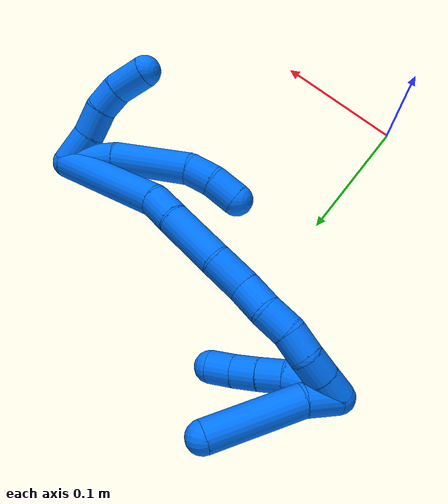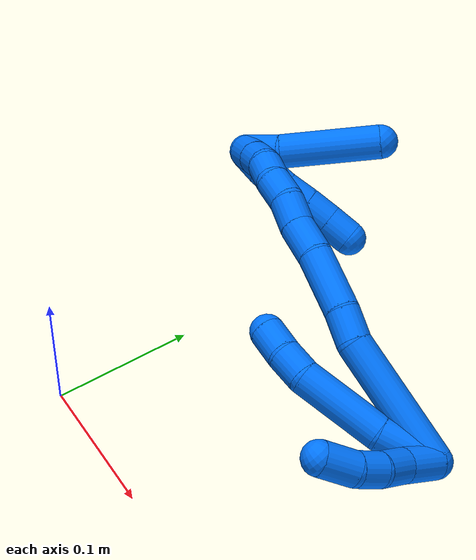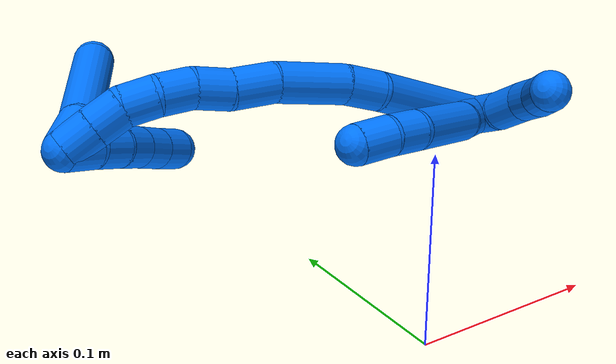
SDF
<sdf version="1.7">
 <world name="default">
  <model name="14">
   <static>0</static>
   <link name="14">
    <collision name="collision-cylinder-e_1_2_8">
     <pose>0.004494 0.006749 -0.019469 -2.80789 0.214724 -1.13852</pose>
     <geometry><cylinder><radius>0.0125</radius><length>0.042181</length></cylinder></geometry>
     <surface>
      <friction><ode><mu>1.16</mu><mu2>1.16</mu2><slip1>0</slip1><slip2>0</slip2></ode></friction>
      <contact><ode><kp>1e+06</kp><kd>1</kd><max_vel>0</max_vel><min_depth>0.001</min_depth></ode></contact>
     </surface>
    </collision>
    <visual name="visual-cylinder-e_1_2_8">
     <pose>0.004494 0.006749 -0.019469 -2.80789 0.214724 -1.13852</pose>
     <geometry><cylinder><radius>0.0125</radius><length>0.042181</length></cylinder></geometry>
     <material><ambient>0 0.462745 1 1</ambient></material>
    </visual>
    <collision name="collision-cylinder-e_2_8_9">
     <pose>0.008647 0.023727 -0.068892 -2.81255 -0.01078 0.064909</pose>
     <geometry><cylinder><radius>0.0125</radius><length>0.063306</length></cylinder></geometry>
     <surface>
      <friction><ode><mu>1.16</mu><mu2>1.16</mu2><slip1>0</slip1><slip2>0</slip2></ode></friction>
      <contact><ode><kp>1e+06</kp><kd>1</kd><max_vel>0</max_vel><min_depth>0.001</min_depth></ode></contact>
     </surface>
    </collision>
    <visual name="visual-cylinder-e_2_8_9">
     <pose>0.008647 0.023727 -0.068892 -2.81255 -0.01078 0.064909</pose>
     <geometry><cylinder><radius>0.0125</radius><length>0.063306</length></cylinder></geometry>
     <material><ambient>0 0.462745 1 1</ambient></material>
    </visual>
    <collision name="collision-cylinder-e_3_9_10">
     <pose>0.00498 0.037927 -0.108216 -2.74068 -0.315798 1.32937</pose>
     <geometry><cylinder><radius>0.0125</radius><length>0.021416</length></cylinder></geometry>
     <surface>
      <friction><ode><mu>1.16</mu><mu2>1.16</mu2><slip1>0</slip1><slip2>0</slip2></ode></friction>
      <contact><ode><kp>1e+06</kp><kd>1</kd><max_vel>0</max_vel><min_depth>0.001</min_depth></ode></contact>
     </surface>
    </collision>
    <visual name="visual-cylinder-e_3_9_10">
     <pose>0.00498 0.037927 -0.108216 -2.74068 -0.315798 1.32937</pose>
     <geometry><cylinder><radius>0.0125</radius><length>0.021416</length></cylinder></geometry>
     <material><ambient>0 0.462745 1 1</ambient></material>
    </visual>
    <collision name="collision-cylinder-e_4_10_6">
     <pose>-0.003803 0.04691 -0.126447 -2.62685 -0.492173 1.52404</pose>
     <geometry><cylinder><radius>0.0125</radius><length>0.023097</length></cylinder></geometry>
     <surface>
      <friction><ode><mu>1.16</mu><mu2>1.16</mu2><slip1>0</slip1><slip2>0</slip2></ode></friction>
      <contact><ode><kp>1e+06</kp><kd>1</kd><max_vel>0</max_vel><min_depth>0.001</min_depth></ode></contact>
     </surface>
    </collision>
    <visual name="visual-cylinder-e_4_10_6">
     <pose>-0.003803 0.04691 -0.126447 -2.62685 -0.492173 1.52404</pose>
     <geometry><cylinder><radius>0.0125</radius><length>0.023097</length></cylinder></geometry>
     <material><ambient>0 0.462745 1 1</ambient></material>
    </visual>
    <collision name="collision-cylinder-e_1_2_11">
     <pose>0.011966 0.000285 -0.007916 -3.10562 0.986063 -3.07466</pose>
     <geometry><cylinder><radius>0.0125</radius><length>0.0287</length></cylinder></geometry>
     <surface>
      <friction><ode><mu>1.16</mu><mu2>1.16</mu2><slip1>0</slip1><slip2>0</slip2></ode></friction>
      <contact><ode><kp>1e+06</kp><kd>1</kd><max_vel>0</max_vel><min_depth>0.001</min_depth></ode></contact>
     </surface>
    </collision>
    <visual name="visual-cylinder-e_1_2_11">
     <pose>0.011966 0.000285 -0.007916 -3.10562 0.986063 -3.07466</pose>
     <geometry><cylinder><radius>0.0125</radius><length>0.0287</length></cylinder></geometry>
     <material><ambient>0 0.462745 1 1</ambient></material>
    </visual>
    <collision name="collision-cylinder-e_2_11_12">
     <pose>0.034233 -0.001323 -0.021483 2.8185 1.04625 2.5908</pose>
     <geometry><cylinder><radius>0.0125</radius><length>0.023802</length></cylinder></geometry>
     <surface>
      <friction><ode><mu>1.16</mu><mu2>1.16</mu2><slip1>0</slip1><slip2>0</slip2></ode></friction>
      <contact><ode><kp>1e+06</kp><kd>1</kd><max_vel>0</max_vel><min_depth>0.001</min_depth></ode></contact>
     </surface>
    </collision>
    <visual name="visual-cylinder-e_2_11_12">
     <pose>0.034233 -0.001323 -0.021483 2.8185 1.04625 2.5908</pose>
     <geometry><cylinder><radius>0.0125</radius><length>0.023802</length></cylinder></geometry>
     <material><ambient>0 0.462745 1 1</ambient></material>
    </visual>
    <collision name="collision-cylinder-e_3_12_13">
     <pose>0.052276 -0.003085 -0.033682 -3.12166 0.868819 -3.09864</pose>
     <geometry><cylinder><radius>0.0125</radius><length>0.02028</length></cylinder></geometry>
     <surface>
      <friction><ode><mu>1.16</mu><mu2>1.16</mu2><slip1>0</slip1><slip2>0</slip2></ode></friction>
      <contact><ode><kp>1e+06</kp><kd>1</kd><max_vel>0</max_vel><min_depth>0.001</min_depth></ode></contact>
     </surface>
    </collision>
    <visual name="visual-cylinder-e_3_12_13">
     <pose>0.052276 -0.003085 -0.033682 -3.12166 0.868819 -3.09864</pose>
     <geometry><cylinder><radius>0.0125</radius><length>0.02028</length></cylinder></geometry>
     <material><ambient>0 0.462745 1 1</ambient></material>
    </visual>
    <collision name="collision-cylinder-e_4_13_5">
     <pose>0.067411 -0.001742 -0.05159 -3.03534 0.574236 -2.78523</pose>
     <geometry><cylinder><radius>0.0125</radius><length>0.027218</length></cylinder></geometry>
     <surface>
      <friction><ode><mu>1.16</mu><mu2>1.16</mu2><slip1>0</slip1><slip2>0</slip2></ode></friction>
      <contact><ode><kp>1e+06</kp><kd>1</kd><max_vel>0</max_vel><min_depth>0.001</min_depth></ode></contact>
     </surface>
    </collision>
    <visual name="visual-cylinder-e_4_13_5">
     <pose>0.067411 -0.001742 -0.05159 -3.03534 0.574236 -2.78523</pose>
     <geometry><cylinder><radius>0.0125</radius><length>0.027218</length></cylinder></geometry>
     <material><ambient>0 0.462745 1 1</ambient></material>
    </visual>
    <collision name="collision-cylinder-e_1_2_14">
     <pose>-0.01184 0.004473 -0.04652 -3.04573 -0.248117 2.40718</pose>
     <geometry><cylinder><radius>0.0125</radius><length>0.096422</length></cylinder></geometry>
     <surface>
      <friction><ode><mu>1.16</mu><mu2>1.16</mu2><slip1>0</slip1><slip2>0</slip2></ode></friction>
      <contact><ode><kp>1e+06</kp><kd>1</kd><max_vel>0</max_vel><min_depth>0.001</min_depth></ode></contact>
     </surface>
    </collision>
    <visual name="visual-cylinder-e_1_2_14">
     <pose>-0.01184 0.004473 -0.04652 -3.04573 -0.248117 2.40718</pose>
     <geometry><cylinder><radius>0.0125</radius><length>0.096422</length></cylinder></geometry>
     <material><ambient>0 0.462745 1 1</ambient></material>
    </visual>
    <collision name="collision-cylinder-e_2_14_15">
     <pose>-0.029854 0.009704 -0.103296 -3.06781 -0.540771 2.87683</pose>
     <geometry><cylinder><radius>0.0125</radius><length>0.023989</length></cylinder></geometry>
     <surface>
      <friction><ode><mu>1.16</mu><mu2>1.16</mu2><slip1>0</slip1><slip2>0</slip2></ode></friction>
      <contact><ode><kp>1e+06</kp><kd>1</kd><max_vel>0</max_vel><min_depth>0.001</min_depth></ode></contact>
     </surface>
    </collision>
    <visual name="visual-cylinder-e_2_14_15">
     <pose>-0.029854 0.009704 -0.103296 -3.06781 -0.540771 2.87683</pose>
     <geometry><cylinder><radius>0.0125</radius><length>0.023989</length></cylinder></geometry>
     <material><ambient>0 0.462745 1 1</ambient></material>
    </visual>
    <collision name="collision-cylinder-e_3_15_16">
     <pose>-0.048309 0.01528 -0.132619 -2.89412 -0.558161 2.32264</pose>
     <geometry><cylinder><radius>0.0125</radius><length>0.046373</length></cylinder></geometry>
     <surface>
      <friction><ode><mu>1.16</mu><mu2>1.16</mu2><slip1>0</slip1><slip2>0</slip2></ode></friction>
      <contact><ode><kp>1e+06</kp><kd>1</kd><max_vel>0</max_vel><min_depth>0.001</min_depth></ode></contact>
     </surface>
    </collision>
    <visual name="visual-cylinder-e_3_15_16">
     <pose>-0.048309 0.01528 -0.132619 -2.89412 -0.558161 2.32264</pose>
     <geometry><cylinder><radius>0.0125</radius><length>0.046373</length></cylinder></geometry>
     <material><ambient>0 0.462745 1 1</ambient></material>
    </visual>
    <collision name="collision-cylinder-e_4_16_17">
     <pose>-0.068143 0.025386 -0.162395 -2.68283 -0.564008 1.78492</pose>
     <geometry><cylinder><radius>0.0125</radius><length>0.028262</length></cylinder></geometry>
     <surface>
      <friction><ode><mu>1.16</mu><mu2>1.16</mu2><slip1>0</slip1><slip2>0</slip2></ode></friction>
      <contact><ode><kp>1e+06</kp><kd>1</kd><max_vel>0</max_vel><min_depth>0.001</min_depth></ode></contact>
     </surface>
    </collision>
    <visual name="visual-cylinder-e_4_16_17">
     <pose>-0.068143 0.025386 -0.162395 -2.68283 -0.564008 1.78492</pose>
     <geometry><cylinder><radius>0.0125</radius><length>0.028262</length></cylinder></geometry>
     <material><ambient>0 0.462745 1 1</ambient></material>
    </visual>
    <collision name="collision-cylinder-e_5_17_18">
     <pose>-0.082208 0.032694 -0.182203 -2.92329 -0.609631 2.47125</pose>
     <geometry><cylinder><radius>0.0125</radius><length>0.022741</length></cylinder></geometry>
     <surface>
      <friction><ode><mu>1.16</mu><mu2>1.16</mu2><slip1>0</slip1><slip2>0</slip2></ode></friction>
      <contact><ode><kp>1e+06</kp><kd>1</kd><max_vel>0</max_vel><min_depth>0.001</min_depth></ode></contact>
     </surface>
    </collision>
    <visual name="visual-cylinder-e_5_17_18">
     <pose>-0.082208 0.032694 -0.182203 -2.92329 -0.609631 2.47125</pose>
     <geometry><cylinder><radius>0.0125</radius><length>0.022741</length></cylinder></geometry>
     <material><ambient>0 0.462745 1 1</ambient></material>
    </visual>
    <collision name="collision-cylinder-e_6_18_19">
     <pose>-0.094321 0.039226 -0.19937 -2.63144 -0.544966 1.63991</pose>
     <geometry><cylinder><radius>0.0125</radius><length>0.021617</length></cylinder></geometry>
     <surface>
      <friction><ode><mu>1.16</mu><mu2>1.16</mu2><slip1>0</slip1><slip2>0</slip2></ode></friction>
      <contact><ode><kp>1e+06</kp><kd>1</kd><max_vel>0</max_vel><min_depth>0.001</min_depth></ode></contact>
     </surface>
    </collision>
    <visual name="visual-cylinder-e_6_18_19">
     <pose>-0.094321 0.039226 -0.19937 -2.63144 -0.544966 1.63991</pose>
     <geometry><cylinder><radius>0.0125</radius><length>0.021617</length></cylinder></geometry>
     <material><ambient>0 0.462745 1 1</ambient></material>
    </visual>
    <collision name="collision-cylinder-e_7_19_20">
     <pose>-0.106837 0.048547 -0.213022 -2.43088 -0.753459 1.63473</pose>
     <geometry><cylinder><radius>0.0125</radius><length>0.020209</length></cylinder></geometry>
     <surface>
      <friction><ode><mu>1.16</mu><mu2>1.16</mu2><slip1>0</slip1><slip2>0</slip2></ode></friction>
      <contact><ode><kp>1e+06</kp><kd>1</kd><max_vel>0</max_vel><min_depth>0.001</min_depth></ode></contact>
     </surface>
    </collision>
    <visual name="visual-cylinder-e_7_19_20">
     <pose>-0.106837 0.048547 -0.213022 -2.43088 -0.753459 1.63473</pose>
     <geometry><cylinder><radius>0.0125</radius><length>0.020209</length></cylinder></geometry>
     <material><ambient>0 0.462745 1 1</ambient></material>
    </visual>
    <collision name="collision-cylinder-e_8_20_21">
     <pose>-0.119664 0.060515 -0.222338 -2.05112 -0.632167 0.98899</pose>
     <geometry><cylinder><radius>0.0125</radius><length>0.020015</length></cylinder></geometry>
     <surface>
      <friction><ode><mu>1.16</mu><mu2>1.16</mu2><slip1>0</slip1><slip2>0</slip2></ode></friction>
      <contact><ode><kp>1e+06</kp><kd>1</kd><max_vel>0</max_vel><min_depth>0.001</min_depth></ode></contact>
     </surface>
    </collision>
    <visual name="visual-cylinder-e_8_20_21">
     <pose>-0.119664 0.060515 -0.222338 -2.05112 -0.632167 0.98899</pose>
     <geometry><cylinder><radius>0.0125</radius><length>0.020015</length></cylinder></geometry>
     <material><ambient>0 0.462745 1 1</ambient></material>
    </visual>
    <collision name="collision-cylinder-e_9_21_1">
     <pose>-0.13143 0.075172 -0.229714 -2.02337 -0.612039 0.935172</pose>
     <geometry><cylinder><radius>0.0125</radius><length>0.020371</length></cylinder></geometry>
     <surface>
      <friction><ode><mu>1.16</mu><mu2>1.16</mu2><slip1>0</slip1><slip2>0</slip2></ode></friction>
      <contact><ode><kp>1e+06</kp><kd>1</kd><max_vel>0</max_vel><min_depth>0.001</min_depth></ode></contact>
     </surface>
    </collision>
    <visual name="visual-cylinder-e_9_21_1">
     <pose>-0.13143 0.075172 -0.229714 -2.02337 -0.612039 0.935172</pose>
     <geometry><cylinder><radius>0.0125</radius><length>0.020371</length></cylinder></geometry>
     <material><ambient>0 0.462745 1 1</ambient></material>
    </visual>
    <collision name="collision-cylinder-e_1_1_22">
     <pose>-0.14068 0.07275 -0.22539 0.893983 -0.261004 -0.125662</pose>
     <geometry><cylinder><radius>0.0125</radius><length>0.02634</length></cylinder></geometry>
     <surface>
      <friction><ode><mu>1.16</mu><mu2>1.16</mu2><slip1>0</slip1><slip2>0</slip2></ode></friction>
      <contact><ode><kp>1e+06</kp><kd>1</kd><max_vel>0</max_vel><min_depth>0.001</min_depth></ode></contact>
     </surface>
    </collision>
    <visual name="visual-cylinder-e_1_1_22">
     <pose>-0.14068 0.07275 -0.22539 0.893983 -0.261004 -0.125662</pose>
     <geometry><cylinder><radius>0.0125</radius><length>0.02634</length></cylinder></geometry>
     <material><ambient>0 0.462745 1 1</ambient></material>
    </visual>
    <collision name="collision-cylinder-e_2_22_4">
     <pose>-0.162219 0.038622 -0.196414 0.856117 -0.515022 -0.23918</pose>
     <geometry><cylinder><radius>0.0125</radius><length>0.07366</length></cylinder></geometry>
     <surface>
      <friction><ode><mu>1.16</mu><mu2>1.16</mu2><slip1>0</slip1><slip2>0</slip2></ode></friction>
      <contact><ode><kp>1e+06</kp><kd>1</kd><max_vel>0</max_vel><min_depth>0.001</min_depth></ode></contact>
     </surface>
    </collision>
    <visual name="visual-cylinder-e_2_22_4">
     <pose>-0.162219 0.038622 -0.196414 0.856117 -0.515022 -0.23918</pose>
     <geometry><cylinder><radius>0.0125</radius><length>0.07366</length></cylinder></geometry>
     <material><ambient>0 0.462745 1 1</ambient></material>
    </visual>
    <collision name="collision-cylinder-e_1_1_23">
     <pose>-0.134712 0.079698 -0.224163 0.312493 0.259876 0.041165</pose>
     <geometry><cylinder><radius>0.0125</radius><length>0.02</length></cylinder></geometry>
     <surface>
      <friction><ode><mu>1.16</mu><mu2>1.16</mu2><slip1>0</slip1><slip2>0</slip2></ode></friction>
      <contact><ode><kp>1e+06</kp><kd>1</kd><max_vel>0</max_vel><min_depth>0.001</min_depth></ode></contact>
     </surface>
    </collision>
    <visual name="visual-cylinder-e_1_1_23">
     <pose>-0.134712 0.079698 -0.224163 0.312493 0.259876 0.041165</pose>
     <geometry><cylinder><radius>0.0125</radius><length>0.02</length></cylinder></geometry>
     <material><ambient>0 0.462745 1 1</ambient></material>
    </visual>
    <collision name="collision-cylinder-e_2_23_24">
     <pose>-0.131686 0.074281 -0.205281 0.247438 0.045659 0.005679</pose>
     <geometry><cylinder><radius>0.0125</radius><length>0.02</length></cylinder></geometry>
     <surface>
      <friction><ode><mu>1.16</mu><mu2>1.16</mu2><slip1>0</slip1><slip2>0</slip2></ode></friction>
      <contact><ode><kp>1e+06</kp><kd>1</kd><max_vel>0</max_vel><min_depth>0.001</min_depth></ode></contact>
     </surface>
    </collision>
    <visual name="visual-cylinder-e_2_23_24">
     <pose>-0.131686 0.074281 -0.205281 0.247438 0.045659 0.005679</pose>
     <geometry><cylinder><radius>0.0125</radius><length>0.02</length></cylinder></geometry>
     <material><ambient>0 0.462745 1 1</ambient></material>
    </visual>
    <collision name="collision-cylinder-e_3_24_25">
     <pose>-0.132438 0.069723 -0.185896 0.214289 -0.121129 -0.013044</pose>
     <geometry><cylinder><radius>0.0125</radius><length>0.02</length></cylinder></geometry>
     <surface>
      <friction><ode><mu>1.16</mu><mu2>1.16</mu2><slip1>0</slip1><slip2>0</slip2></ode></friction>
      <contact><ode><kp>1e+06</kp><kd>1</kd><max_vel>0</max_vel><min_depth>0.001</min_depth></ode></contact>
     </surface>
    </collision>
    <visual name="visual-cylinder-e_3_24_25">
     <pose>-0.132438 0.069723 -0.185896 0.214289 -0.121129 -0.013044</pose>
     <geometry><cylinder><radius>0.0125</radius><length>0.02</length></cylinder></geometry>
     <material><ambient>0 0.462745 1 1</ambient></material>
    </visual>
    <collision name="collision-cylinder-e_4_25_26">
     <pose>-0.134531 0.065765 -0.166409 0.186516 -0.088604 -0.008292</pose>
     <geometry><cylinder><radius>0.0125</radius><length>0.02</length></cylinder></geometry>
     <surface>
      <friction><ode><mu>1.16</mu><mu2>1.16</mu2><slip1>0</slip1><slip2>0</slip2></ode></friction>
      <contact><ode><kp>1e+06</kp><kd>1</kd><max_vel>0</max_vel><min_depth>0.001</min_depth></ode></contact>
     </surface>
    </collision>
    <visual name="visual-cylinder-e_4_25_26">
     <pose>-0.134531 0.065765 -0.166409 0.186516 -0.088604 -0.008292</pose>
     <geometry><cylinder><radius>0.0125</radius><length>0.02</length></cylinder></geometry>
     <material><ambient>0 0.462745 1 1</ambient></material>
    </visual>
    <collision name="collision-cylinder-e_5_26_3">
     <pose>-0.135766 0.061865 -0.14684 0.206894 -0.035054 -0.00364</pose>
     <geometry><cylinder><radius>0.0125</radius><length>0.02</length></cylinder></geometry>
     <surface>
      <friction><ode><mu>1.16</mu><mu2>1.16</mu2><slip1>0</slip1><slip2>0</slip2></ode></friction>
      <contact><ode><kp>1e+06</kp><kd>1</kd><max_vel>0</max_vel><min_depth>0.001</min_depth></ode></contact>
     </surface>
    </collision>
    <visual name="visual-cylinder-e_5_26_3">
     <pose>-0.135766 0.061865 -0.14684 0.206894 -0.035054 -0.00364</pose>
     <geometry><cylinder><radius>0.0125</radius><length>0.02</length></cylinder></geometry>
     <material><ambient>0 0.462745 1 1</ambient></material>
    </visual>
    <collision name="collision-sphere-3">
     <pose>-0.136117 0.059812 -0.137059 0 -0 0</pose>
     <geometry><sphere><radius>0.0125</radius></sphere></geometry>
     <surface>
      <friction><ode><mu>1.16</mu><mu2>1.16</mu2><slip1>0</slip1><slip2>0</slip2></ode></friction>
      <contact><ode><kp>1e+06</kp><kd>1</kd><max_vel>0</max_vel><min_depth>0.001</min_depth></ode></contact>
     </surface>
    </collision>
    <visual name="visual-sphere-3">
     <pose>-0.136117 0.059812 -0.137059 0 -0 0</pose>
     <geometry><sphere><radius>0.0125</radius></sphere></geometry>
     <material><ambient>0 0.462745 1 1</ambient></material>
    </visual>
    <collision name="collision-sphere-26">
     <pose>-0.135416 0.063918 -0.15662 0 -0 0</pose>
     <geometry><sphere><radius>0.0125</radius></sphere></geometry>
     <surface>
      <friction><ode><mu>1.16</mu><mu2>1.16</mu2><slip1>0</slip1><slip2>0</slip2></ode></friction>
      <contact><ode><kp>1e+06</kp><kd>1</kd><max_vel>0</max_vel><min_depth>0.001</min_depth></ode></contact>
     </surface>
    </collision>
    <visual name="visual-sphere-26">
     <pose>-0.135416 0.063918 -0.15662 0 -0 0</pose>
     <geometry><sphere><radius>0.0125</radius></sphere></geometry>
     <material><ambient>0 0.462745 1 1</ambient></material>
    </visual>
    <collision name="collision-sphere-25">
     <pose>-0.133646 0.067612 -0.176197 0 -0 0</pose>
     <geometry><sphere><radius>0.0125</radius></sphere></geometry>
     <surface>
      <friction><ode><mu>1.16</mu><mu2>1.16</mu2><slip1>0</slip1><slip2>0</slip2></ode></friction>
      <contact><ode><kp>1e+06</kp><kd>1</kd><max_vel>0</max_vel><min_depth>0.001</min_depth></ode></contact>
     </surface>
    </collision>
    <visual name="visual-sphere-25">
     <pose>-0.133646 0.067612 -0.176197 0 -0 0</pose>
     <geometry><sphere><radius>0.0125</radius></sphere></geometry>
     <material><ambient>0 0.462745 1 1</ambient></material>
    </visual>
    <collision name="collision-sphere-24">
     <pose>-0.131229 0.071834 -0.195596 0 -0 0</pose>
     <geometry><sphere><radius>0.0125</radius></sphere></geometry>
     <surface>
      <friction><ode><mu>1.16</mu><mu2>1.16</mu2><slip1>0</slip1><slip2>0</slip2></ode></friction>
      <contact><ode><kp>1e+06</kp><kd>1</kd><max_vel>0</max_vel><min_depth>0.001</min_depth></ode></contact>
     </surface>
    </collision>
    <visual name="visual-sphere-24">
     <pose>-0.131229 0.071834 -0.195596 0 -0 0</pose>
     <geometry><sphere><radius>0.0125</radius></sphere></geometry>
     <material><ambient>0 0.462745 1 1</ambient></material>
    </visual>
    <collision name="collision-sphere-23">
     <pose>-0.132142 0.076727 -0.214967 0 -0 0</pose>
     <geometry><sphere><radius>0.0125</radius></sphere></geometry>
     <surface>
      <friction><ode><mu>1.16</mu><mu2>1.16</mu2><slip1>0</slip1><slip2>0</slip2></ode></friction>
      <contact><ode><kp>1e+06</kp><kd>1</kd><max_vel>0</max_vel><min_depth>0.001</min_depth></ode></contact>
     </surface>
    </collision>
    <visual name="visual-sphere-23">
     <pose>-0.132142 0.076727 -0.214967 0 -0 0</pose>
     <geometry><sphere><radius>0.0125</radius></sphere></geometry>
     <material><ambient>0 0.462745 1 1</ambient></material>
    </visual>
    <collision name="collision-sphere-4">
     <pose>-0.18036 0.014412 -0.175408 0 -0 0</pose>
     <geometry><sphere><radius>0.0125</radius></sphere></geometry>
     <surface>
      <friction><ode><mu>1.16</mu><mu2>1.16</mu2><slip1>0</slip1><slip2>0</slip2></ode></friction>
      <contact><ode><kp>1e+06</kp><kd>1</kd><max_vel>0</max_vel><min_depth>0.001</min_depth></ode></contact>
     </surface>
    </collision>
    <visual name="visual-sphere-4">
     <pose>-0.18036 0.014412 -0.175408 0 -0 0</pose>
     <geometry><sphere><radius>0.0125</radius></sphere></geometry>
     <material><ambient>0 0.462745 1 1</ambient></material>
    </visual>
    <collision name="collision-sphere-22">
     <pose>-0.144079 0.062831 -0.217421 0 -0 0</pose>
     <geometry><sphere><radius>0.0125</radius></sphere></geometry>
     <surface>
      <friction><ode><mu>1.16</mu><mu2>1.16</mu2><slip1>0</slip1><slip2>0</slip2></ode></friction>
      <contact><ode><kp>1e+06</kp><kd>1</kd><max_vel>0</max_vel><min_depth>0.001</min_depth></ode></contact>
     </surface>
    </collision>
    <visual name="visual-sphere-22">
     <pose>-0.144079 0.062831 -0.217421 0 -0 0</pose>
     <geometry><sphere><radius>0.0125</radius></sphere></geometry>
     <material><ambient>0 0.462745 1 1</ambient></material>
    </visual>
    <collision name="collision-sphere-1">
     <pose>-0.137282 0.082669 -0.233359 0 -0 0</pose>
     <geometry><sphere><radius>0.0125</radius></sphere></geometry>
     <surface>
      <friction><ode><mu>1.16</mu><mu2>1.16</mu2><slip1>0</slip1><slip2>0</slip2></ode></friction>
      <contact><ode><kp>1e+06</kp><kd>1</kd><max_vel>0</max_vel><min_depth>0.001</min_depth></ode></contact>
     </surface>
    </collision>
    <visual name="visual-sphere-1">
     <pose>-0.137282 0.082669 -0.233359 0 -0 0</pose>
     <geometry><sphere><radius>0.0125</radius></sphere></geometry>
     <material><ambient>0 0.462745 1 1</ambient></material>
    </visual>
    <collision name="collision-sphere-21">
     <pose>-0.125578 0.067675 -0.226068 0 -0 0</pose>
     <geometry><sphere><radius>0.0125</radius></sphere></geometry>
     <surface>
      <friction><ode><mu>1.16</mu><mu2>1.16</mu2><slip1>0</slip1><slip2>0</slip2></ode></friction>
      <contact><ode><kp>1e+06</kp><kd>1</kd><max_vel>0</max_vel><min_depth>0.001</min_depth></ode></contact>
     </surface>
    </collision>
    <visual name="visual-sphere-21">
     <pose>-0.125578 0.067675 -0.226068 0 -0 0</pose>
     <geometry><sphere><radius>0.0125</radius></sphere></geometry>
     <material><ambient>0 0.462745 1 1</ambient></material>
    </visual>
    <collision name="collision-sphere-11">
     <pose>0.023932 0.00057 -0.015831 0 -0 0</pose>
     <geometry><sphere><radius>0.0125</radius></sphere></geometry>
     <surface>
      <friction><ode><mu>1.16</mu><mu2>1.16</mu2><slip1>0</slip1><slip2>0</slip2></ode></friction>
      <contact><ode><kp>1e+06</kp><kd>1</kd><max_vel>0</max_vel><min_depth>0.001</min_depth></ode></contact>
     </surface>
    </collision>
    <visual name="visual-sphere-11">
     <pose>0.023932 0.00057 -0.015831 0 -0 0</pose>
     <geometry><sphere><radius>0.0125</radius></sphere></geometry>
     <material><ambient>0 0.462745 1 1</ambient></material>
    </visual>
    <collision name="collision-sphere-6">
     <pose>-0.00926 0.05192 -0.135306 0 -0 0</pose>
     <geometry><sphere><radius>0.0125</radius></sphere></geometry>
     <surface>
      <friction><ode><mu>1.16</mu><mu2>1.16</mu2><slip1>0</slip1><slip2>0</slip2></ode></friction>
      <contact><ode><kp>1e+06</kp><kd>1</kd><max_vel>0</max_vel><min_depth>0.001</min_depth></ode></contact>
     </surface>
    </collision>
    <visual name="visual-sphere-6">
     <pose>-0.00926 0.05192 -0.135306 0 -0 0</pose>
     <geometry><sphere><radius>0.0125</radius></sphere></geometry>
     <material><ambient>0 0.462745 1 1</ambient></material>
    </visual>
    <collision name="collision-sphere-10">
     <pose>0.001654 0.041899 -0.117588 0 -0 0</pose>
     <geometry><sphere><radius>0.0125</radius></sphere></geometry>
     <surface>
      <friction><ode><mu>1.16</mu><mu2>1.16</mu2><slip1>0</slip1><slip2>0</slip2></ode></friction>
      <contact><ode><kp>1e+06</kp><kd>1</kd><max_vel>0</max_vel><min_depth>0.001</min_depth></ode></contact>
     </surface>
    </collision>
    <visual name="visual-sphere-10">
     <pose>0.001654 0.041899 -0.117588 0 -0 0</pose>
     <geometry><sphere><radius>0.0125</radius></sphere></geometry>
     <material><ambient>0 0.462745 1 1</ambient></material>
    </visual>
    <collision name="collision-sphere-9">
     <pose>0.008305 0.033954 -0.098844 0 -0 0</pose>
     <geometry><sphere><radius>0.0125</radius></sphere></geometry>
     <surface>
      <friction><ode><mu>1.16</mu><mu2>1.16</mu2><slip1>0</slip1><slip2>0</slip2></ode></friction>
      <contact><ode><kp>1e+06</kp><kd>1</kd><max_vel>0</max_vel><min_depth>0.001</min_depth></ode></contact>
     </surface>
    </collision>
    <visual name="visual-sphere-9">
     <pose>0.008305 0.033954 -0.098844 0 -0 0</pose>
     <geometry><sphere><radius>0.0125</radius></sphere></geometry>
     <material><ambient>0 0.462745 1 1</ambient></material>
    </visual>
    <collision name="collision-sphere-2">
     <geometry><sphere><radius>0.0125</radius></sphere></geometry>
     <surface>
      <friction><ode><mu>1.16</mu><mu2>1.16</mu2><slip1>0</slip1><slip2>0</slip2></ode></friction>
      <contact><ode><kp>1e+06</kp><kd>1</kd><max_vel>0</max_vel><min_depth>0.001</min_depth></ode></contact>
     </surface>
    </collision>
    <visual name="visual-sphere-2">
     <geometry><sphere><radius>0.0125</radius></sphere></geometry>
     <material><ambient>0 0.462745 1 1</ambient></material>
    </visual>
    <collision name="collision-sphere-19">
     <pose>-0.099924 0.043739 -0.207436 0 -0 0</pose>
     <geometry><sphere><radius>0.0125</radius></sphere></geometry>
     <surface>
      <friction><ode><mu>1.16</mu><mu2>1.16</mu2><slip1>0</slip1><slip2>0</slip2></ode></friction>
      <contact><ode><kp>1e+06</kp><kd>1</kd><max_vel>0</max_vel><min_depth>0.001</min_depth></ode></contact>
     </surface>
    </collision>
    <visual name="visual-sphere-19">
     <pose>-0.099924 0.043739 -0.207436 0 -0 0</pose>
     <geometry><sphere><radius>0.0125</radius></sphere></geometry>
     <material><ambient>0 0.462745 1 1</ambient></material>
    </visual>
    <collision name="collision-sphere-8">
     <pose>0.008988 0.013499 -0.038939 0 -0 0</pose>
     <geometry><sphere><radius>0.0125</radius></sphere></geometry>
     <surface>
      <friction><ode><mu>1.16</mu><mu2>1.16</mu2><slip1>0</slip1><slip2>0</slip2></ode></friction>
      <contact><ode><kp>1e+06</kp><kd>1</kd><max_vel>0</max_vel><min_depth>0.001</min_depth></ode></contact>
     </surface>
    </collision>
    <visual name="visual-sphere-8">
     <pose>0.008988 0.013499 -0.038939 0 -0 0</pose>
     <geometry><sphere><radius>0.0125</radius></sphere></geometry>
     <material><ambient>0 0.462745 1 1</ambient></material>
    </visual>
    <collision name="collision-sphere-12">
     <pose>0.044534 -0.003215 -0.027135 0 -0 0</pose>
     <geometry><sphere><radius>0.0125</radius></sphere></geometry>
     <surface>
      <friction><ode><mu>1.16</mu><mu2>1.16</mu2><slip1>0</slip1><slip2>0</slip2></ode></friction>
      <contact><ode><kp>1e+06</kp><kd>1</kd><max_vel>0</max_vel><min_depth>0.001</min_depth></ode></contact>
     </surface>
    </collision>
    <visual name="visual-sphere-12">
     <pose>0.044534 -0.003215 -0.027135 0 -0 0</pose>
     <geometry><sphere><radius>0.0125</radius></sphere></geometry>
     <material><ambient>0 0.462745 1 1</ambient></material>
    </visual>
    <collision name="collision-sphere-13">
     <pose>0.060018 -0.002954 -0.040228 0 -0 0</pose>
     <geometry><sphere><radius>0.0125</radius></sphere></geometry>
     <surface>
      <friction><ode><mu>1.16</mu><mu2>1.16</mu2><slip1>0</slip1><slip2>0</slip2></ode></friction>
      <contact><ode><kp>1e+06</kp><kd>1</kd><max_vel>0</max_vel><min_depth>0.001</min_depth></ode></contact>
     </surface>
    </collision>
    <visual name="visual-sphere-13">
     <pose>0.060018 -0.002954 -0.040228 0 -0 0</pose>
     <geometry><sphere><radius>0.0125</radius></sphere></geometry>
     <material><ambient>0 0.462745 1 1</ambient></material>
    </visual>
    <collision name="collision-sphere-5">
     <pose>0.074803 -0.000531 -0.062952 0 -0 0</pose>
     <geometry><sphere><radius>0.0125</radius></sphere></geometry>
     <surface>
      <friction><ode><mu>1.16</mu><mu2>1.16</mu2><slip1>0</slip1><slip2>0</slip2></ode></friction>
      <contact><ode><kp>1e+06</kp><kd>1</kd><max_vel>0</max_vel><min_depth>0.001</min_depth></ode></contact>
     </surface>
    </collision>
    <visual name="visual-sphere-5">
     <pose>0.074803 -0.000531 -0.062952 0 -0 0</pose>
     <geometry><sphere><radius>0.0125</radius></sphere></geometry>
     <material><ambient>0 0.462745 1 1</ambient></material>
    </visual>
    <collision name="collision-sphere-14">
     <pose>-0.023679 0.008946 -0.09304 0 -0 0</pose>
     <geometry><sphere><radius>0.0125</radius></sphere></geometry>
     <surface>
      <friction><ode><mu>1.16</mu><mu2>1.16</mu2><slip1>0</slip1><slip2>0</slip2></ode></friction>
      <contact><ode><kp>1e+06</kp><kd>1</kd><max_vel>0</max_vel><min_depth>0.001</min_depth></ode></contact>
     </surface>
    </collision>
    <visual name="visual-sphere-14">
     <pose>-0.023679 0.008946 -0.09304 0 -0 0</pose>
     <geometry><sphere><radius>0.0125</radius></sphere></geometry>
     <material><ambient>0 0.462745 1 1</ambient></material>
    </visual>
    <collision name="collision-sphere-15">
     <pose>-0.036029 0.010462 -0.113551 0 -0 0</pose>
     <geometry><sphere><radius>0.0125</radius></sphere></geometry>
     <surface>
      <friction><ode><mu>1.16</mu><mu2>1.16</mu2><slip1>0</slip1><slip2>0</slip2></ode></friction>
      <contact><ode><kp>1e+06</kp><kd>1</kd><max_vel>0</max_vel><min_depth>0.001</min_depth></ode></contact>
     </surface>
    </collision>
    <visual name="visual-sphere-15">
     <pose>-0.036029 0.010462 -0.113551 0 -0 0</pose>
     <geometry><sphere><radius>0.0125</radius></sphere></geometry>
     <material><ambient>0 0.462745 1 1</ambient></material>
    </visual>
    <collision name="collision-sphere-16">
     <pose>-0.060589 0.020097 -0.151687 0 -0 0</pose>
     <geometry><sphere><radius>0.0125</radius></sphere></geometry>
     <surface>
      <friction><ode><mu>1.16</mu><mu2>1.16</mu2><slip1>0</slip1><slip2>0</slip2></ode></friction>
      <contact><ode><kp>1e+06</kp><kd>1</kd><max_vel>0</max_vel><min_depth>0.001</min_depth></ode></contact>
     </surface>
    </collision>
    <visual name="visual-sphere-16">
     <pose>-0.060589 0.020097 -0.151687 0 -0 0</pose>
     <geometry><sphere><radius>0.0125</radius></sphere></geometry>
     <material><ambient>0 0.462745 1 1</ambient></material>
    </visual>
    <collision name="collision-sphere-17">
     <pose>-0.075697 0.030675 -0.173102 0 -0 0</pose>
     <geometry><sphere><radius>0.0125</radius></sphere></geometry>
     <surface>
      <friction><ode><mu>1.16</mu><mu2>1.16</mu2><slip1>0</slip1><slip2>0</slip2></ode></friction>
      <contact><ode><kp>1e+06</kp><kd>1</kd><max_vel>0</max_vel><min_depth>0.001</min_depth></ode></contact>
     </surface>
    </collision>
    <visual name="visual-sphere-17">
     <pose>-0.075697 0.030675 -0.173102 0 -0 0</pose>
     <geometry><sphere><radius>0.0125</radius></sphere></geometry>
     <material><ambient>0 0.462745 1 1</ambient></material>
    </visual>
    <collision name="collision-sphere-18">
     <pose>-0.088718 0.034712 -0.191305 0 -0 0</pose>
     <geometry><sphere><radius>0.0125</radius></sphere></geometry>
     <surface>
      <friction><ode><mu>1.16</mu><mu2>1.16</mu2><slip1>0</slip1><slip2>0</slip2></ode></friction>
      <contact><ode><kp>1e+06</kp><kd>1</kd><max_vel>0</max_vel><min_depth>0.001</min_depth></ode></contact>
     </surface>
    </collision>
    <visual name="visual-sphere-18">
     <pose>-0.088718 0.034712 -0.191305 0 -0 0</pose>
     <geometry><sphere><radius>0.0125</radius></sphere></geometry>
     <material><ambient>0 0.462745 1 1</ambient></material>
    </visual>
    <collision name="collision-sphere-20">
     <pose>-0.113751 0.053355 -0.218607 0 -0 0</pose>
     <geometry><sphere><radius>0.0125</radius></sphere></geometry>
     <surface>
      <friction><ode><mu>1.16</mu><mu2>1.16</mu2><slip1>0</slip1><slip2>0</slip2></ode></friction>
      <contact><ode><kp>1e+06</kp><kd>1</kd><max_vel>0</max_vel><min_depth>0.001</min_depth></ode></contact>
     </surface>
    </collision>
    <visual name="visual-sphere-20">
     <pose>-0.113751 0.053355 -0.218607 0 -0 0</pose>
     <geometry><sphere><radius>0.0125</radius></sphere></geometry>
     <material><ambient>0 0.462745 1 1</ambient></material>
    </visual>
    <inertial>
     <pose>-0.05519 0.030323 -0.122418 0 -0 0</pose>
     <mass>0.75</mass>
     <inertia><ixx>4.4e-05</ixx><ixy>0</ixy><ixz>0</ixz><iyy>0.000151</iyy><iyz>0</iyz><izz>2.3e-05</izz></inertia>
    </inertial>
   </link>
   <pose>0.188921 0.183461 0.011197 -2.1591 -0.182508 -1.11441</pose>
  </model>
 </world>
</sdf>
